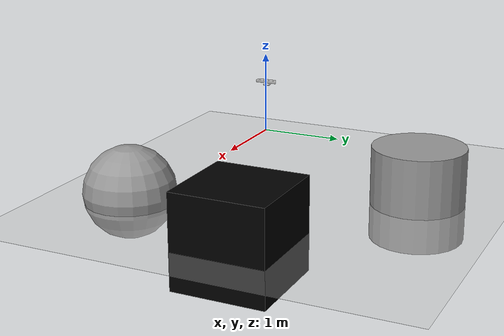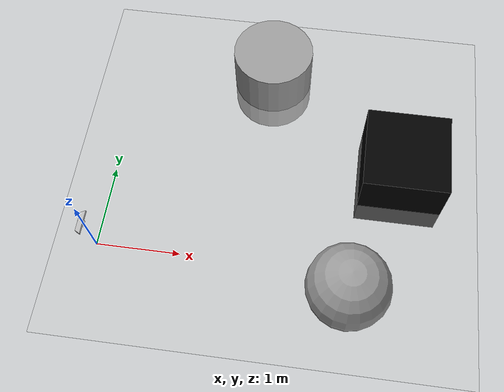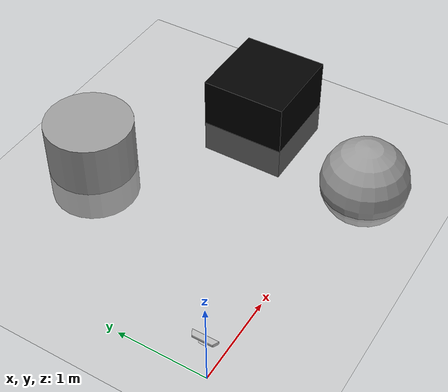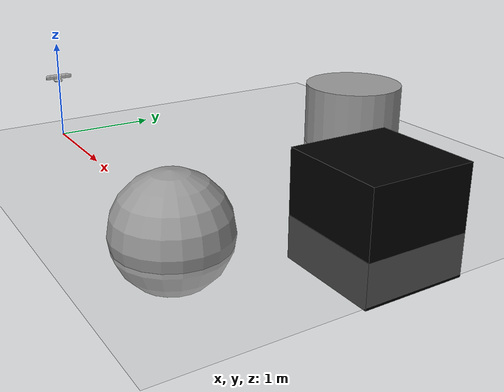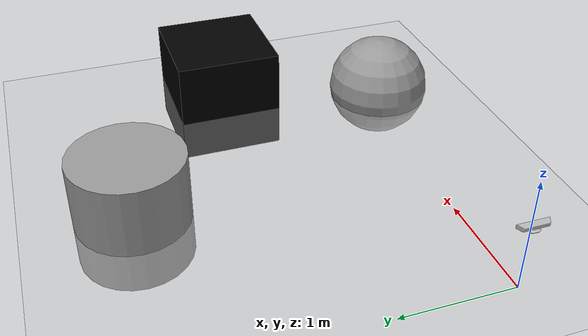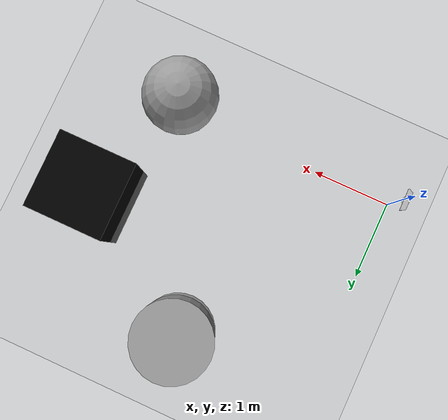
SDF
<sdf version="1.7">
 <world name="default">
  <scene><background>1 1 1 1</background><ambient>0.4 0.4 0.4 1</ambient><shadows>1</shadows></scene>
  <light name="sun" type="directional">
   <pose>0 0 10 0 -0 0</pose>
   <diffuse>0.8 0.8 0.8 1</diffuse>
   <specular>0.2 0.2 0.2 1</specular>
   <attenuation>
    <range>1000</range>
    <constant>0.9</constant>
    <linear>0.01</linear>
    <quadratic>0.001</quadratic>
   </attenuation>
   <direction>-0.5 0.1 -0.9</direction>
   <spot><inner_angle>0</inner_angle><outer_angle>0</outer_angle><falloff>0</falloff></spot>
  </light>
  <model name="ground_plane">
   <static>1</static>
   <link name="link">
    <collision name="collision">
     <geometry><plane><normal>0 0 1</normal><size>10000 10000</size></plane></geometry>
     <surface><friction><ode><mu>100</mu><mu2>50</mu2></ode></friction></surface>
    </collision>
    <visual name="visual">
     <cast_shadows>0</cast_shadows>
     <geometry><plane><normal>0 0 1</normal><size>100 100</size></plane></geometry>
     <material>
      <ambient>0 0 0 1</ambient>
      <diffuse>0 0 0 1</diffuse>
      <specular>0 0 0 0</specular>
      <emissive>1 1 1 1</emissive>
      <script><uri>file://media/materials/scripts/gazebo.material</uri><name>Gazebo/Grey</name></script>
     </material>
    </visual>
   </link>
  </model>
  <gravity>0 0 -9.8</gravity>
  <magnetic_field>6e-06 2.3e-05 -4.2e-05</magnetic_field>
  <atmosphere type="adiabatic"/>
  <physics type="ode">
   <max_step_size>0.001</max_step_size>
   <real_time_factor>1</real_time_factor>
   <real_time_update_rate>1000</real_time_update_rate>
  </physics>
  <scene><ambient>0.4 0.4 0.4 1</ambient><background>0.7 0.7 0.7 1</background><shadows>1</shadows></scene>
  <spherical_coordinates>
   <surface_model>EARTH_WGS84</surface_model>
   <latitude_deg>0</latitude_deg>
   <longitude_deg>0</longitude_deg>
   <elevation>0</elevation>
   <heading_deg>0</heading_deg>
  </spherical_coordinates>
  <model name="kinect_ros">
   <pose>0 0 0.645012 0 0.0 0</pose>
   <link name="link">
    <inertial><mass>0.1</mass></inertial>
    <collision name="collision"><geometry><box><size>0.073 0.276 0.072</size></box></geometry></collision>
    <visual name="visual"><geometry><mesh><uri>model://kinect/meshes/kinect.dae</uri></mesh></geometry></visual>
    <sensor name="camera" type="depth">
     <update_rate>20</update_rate>
     <camera>
      <horizontal_fov>1.0472</horizontal_fov>
      <image><width>640</width><height>480</height><format>R8G8B8</format></image>
      <clip><near>0.05</near><far>3</far></clip>
     </camera>
     <plugin name="camera_plugin" filename="libgazebo_ros_openni_kinect.so">
      <baseline>0.2</baseline>
      <alwaysOn>1</alwaysOn>
      <updateRate>0.0</updateRate>
      <cameraName>camera_ir</cameraName>
      <imageTopicName>/camera/color/image_raw</imageTopicName>
      <cameraInfoTopicName>/camera/color/camera_info</cameraInfoTopicName>
      <depthImageTopicName>/camera/depth/image_raw</depthImageTopicName>
      <depthImageCameraInfoTopicName>/camera/depth/camera_info</depthImageCameraInfoTopicName>
      <pointCloudTopicName>/camera/depth/points</pointCloudTopicName>
      <frameName>camera_link</frameName>
      <pointCloudCutoff>0.5</pointCloudCutoff>
      <pointCloudCutoffMax>3.0</pointCloudCutoffMax>
      <distortionK1>0</distortionK1>
      <distortionK2>0</distortionK2>
      <distortionK3>0</distortionK3>
      <distortionT1>0</distortionT1>
      <distortionT2>0</distortionT2>
      <CxPrime>0</CxPrime>
      <Cx>0</Cx>
      <Cy>0</Cy>
      <focalLength>0</focalLength>
      <hackBaseline>0</hackBaseline>
     </plugin>
    </sensor>
   </link>
   <static>1</static>
  </model>
  <model name="unit_box">
   <pose>3.51589 1.40907 0.095144 0 0 -2e-06</pose>
   <link name="link">
    <inertial>
     <mass>1</mass>
     <inertia>
      <ixx>0.166667</ixx>
      <ixy>0</ixy>
      <ixz>0</ixz>
      <iyy>0.166667</iyy>
      <iyz>0</iyz>
      <izz>0.166667</izz>
     </inertia>
    </inertial>
    <collision name="collision"><geometry><box><size>1 1 1</size></box></geometry></collision>
    <visual name="visual">
     <geometry><box><size>1 1 1</size></box></geometry>
     <material>
      <ambient>0 0 0 1</ambient>
      <diffuse>0 0 0 1</diffuse>
      <specular>0 0 0 0</specular>
      <emissive>0 1 0 1</emissive>
     </material>
    </visual>
   </link>
  </model>
  <model name="unit_cylinder">
   <pose>1.76879 2.61123 0.118811 0 -0 1e-06</pose>
   <link name="link">
    <inertial>
     <mass>1</mass>
     <inertia><ixx>0.145833</ixx><ixy>0</ixy><ixz>0</ixz><iyy>0.145833</iyy><iyz>0</iyz><izz>0.125</izz></inertia>
    </inertial>
    <collision name="collision">
     <geometry><cylinder><radius>0.5</radius><length>1</length></cylinder></geometry>
    </collision>
    <visual name="visual">
     <geometry><cylinder><radius>0.5</radius><length>1</length></cylinder></geometry>
     <material>
      <ambient>0 0 0 1</ambient>
      <diffuse>0 0 0 1</diffuse>
      <specular>0 0 0 0</specular>
      <emissive>0 0 1 1</emissive>
      <script><name>Gazebo/Grey</name><uri>file://media/materials/scripts/gazebo.material</uri></script>
     </material>
    </visual>
   </link>
  </model>
  <model name="unit_sphere">
   <pose>2.98477 -0.166152 0.099415 0 -0 0</pose>
   <link name="link">
    <inertial>
     <mass>1</mass>
     <inertia><ixx>0.1</ixx><ixy>0</ixy><ixz>0</ixz><iyy>0.1</iyy><iyz>0</iyz><izz>0.1</izz></inertia>
    </inertial>
    <collision name="collision"><geometry><sphere><radius>0.5</radius></sphere></geometry></collision>
    <visual name="visual">
     <geometry><sphere><radius>0.5</radius></sphere></geometry>
     <material>
      <ambient>0 0 0 1</ambient>
      <diffuse>0 0 0 1</diffuse>
      <specular>0 0 0 0</specular>
      <emissive>1 0 0 1</emissive>
      <script><name>Gazebo/Grey</name><uri>file://media/materials/scripts/gazebo.material</uri></script>
     </material>
    </visual>
   </link>
   <static>1</static>
  </model>
 </world>
</sdf>
